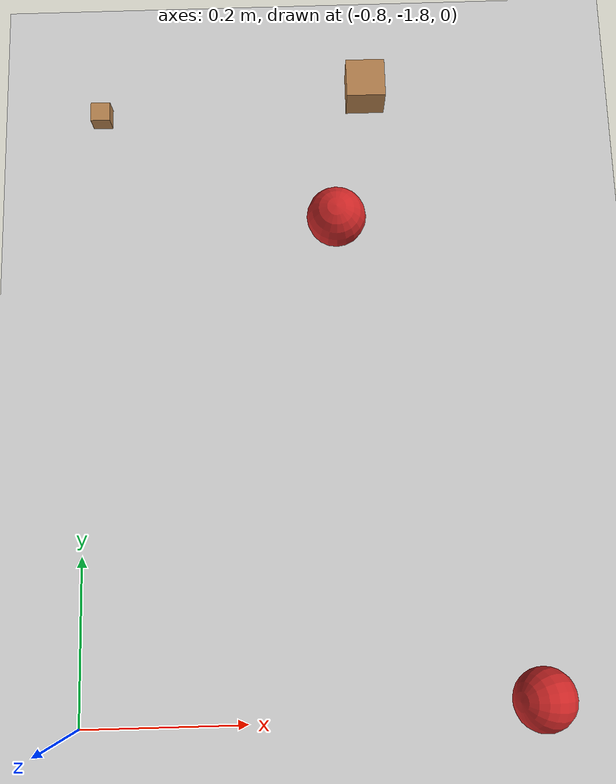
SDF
<sdf version="1.4">
 <world name="default">
  <light name="sun" type="directional">
   <pose>0 0 10 0 -0 0</pose>
   <diffuse>0.8 0.8 0.8 1</diffuse>
   <specular>0.2 0.2 0.2 1</specular>
   <attenuation>
    <range>1000</range>
    <constant>0.9</constant>
    <linear>0.01</linear>
    <quadratic>0.001</quadratic>
   </attenuation>
   <direction>-0.5 0.1 -0.9</direction>
  </light>
  <model name="ground_plane">
   <static>1</static>
   <link name="link">
    <collision name="collision">
     <geometry><plane><normal>0 0 1</normal><size>100 100</size></plane></geometry>
     <surface><friction><ode><mu>100</mu><mu2>50</mu2></ode></friction></surface>
    </collision>
    <visual name="visual">
     <cast_shadows>0</cast_shadows>
     <geometry><plane><normal>0 0 1</normal><size>100 100</size></plane></geometry>
     <material>
      <script><uri>file://media/materials/scripts/gazebo.material</uri><name>Gazebo/Grey</name></script>
     </material>
    </visual>
    <velocity_decay><linear>0</linear><angular>0</angular></velocity_decay>
   </link>
  </model>
  <physics type="ode">
   <max_step_size>0.001</max_step_size>
   <real_time_factor>1</real_time_factor>
   <real_time_update_rate>1000</real_time_update_rate>
   <gravity>0 0 -9.8</gravity>
  </physics>
  <scene><ambient>0.4 0.4 0.4 1</ambient><background>0.7 0.7 0.7 1</background><shadows>1</shadows></scene>
  <spherical_coordinates>
   <surface_model>EARTH_WGS84</surface_model>
   <latitude_deg>0</latitude_deg>
   <longitude_deg>0</longitude_deg>
   <elevation>0</elevation>
   <heading_deg>0</heading_deg>
  </spherical_coordinates>
  <model name="wood_cube_5cm">
   <link name="link">
    <pose>0 0 0.025 0 -0 0</pose>
    <inertial>
     <mass>0.0565</mass>
     <inertia>
      <ixx>2.35417e-05</ixx>
      <ixy>0</ixy>
      <ixz>0</ixz>
      <iyy>2.35417e-05</iyy>
      <iyz>0</iyz>
      <izz>2.35417e-05</izz>
     </inertia>
    </inertial>
    <collision name="collision">
     <geometry><box><size>0.05 0.05 0.05</size></box></geometry>
     <surface><contact><ode><max_vel>0.1</max_vel><min_depth>0.001</min_depth></ode></contact></surface>
    </collision>
    <visual name="visual">
     <geometry><box><size>0.05 0.05 0.05</size></box></geometry>
     <material>
      <script><uri>file://media/materials/scripts/gazebo.material</uri><name>Gazebo/Wood</name></script>
     </material>
    </visual>
    <velocity_decay><linear>0</linear><angular>0</angular></velocity_decay>
   </link>
   <pose>-0.433518 -1 -7e-06 0 -0 0</pose>
   <static>0</static>
  </model>
  <model name="cricket_ball">
   <link name="link">
    <pose>0 0 0.0375 0 -0 0</pose>
    <inertial>
     <mass>0.1467</mass>
     <inertia>
      <ixx>8.25187e-05</ixx>
      <ixy>0</ixy>
      <ixz>0</ixz>
      <iyy>8.25187e-05</iyy>
      <iyz>0</iyz>
      <izz>8.25187e-05</izz>
     </inertia>
    </inertial>
    <collision name="collision"><geometry><sphere><radius>0.0375</radius></sphere></geometry></collision>
    <visual name="visual">
     <geometry><sphere><radius>0.0375</radius></sphere></geometry>
     <material>
      <script><uri>file://media/materials/scripts/gazebo.material</uri><name>Gazebo/Red</name></script>
     </material>
    </visual>
    <velocity_decay><linear>0</linear><angular>0.005</angular></velocity_decay>
   </link>
   <pose>-0.477339 -1.18516 0 0.001379 -0.00066 -7.49116e-23</pose>
   <static>0</static>
  </model>
  <model name="wood_cube_2_5cm">
   <link name="link">
    <pose>0 0 0.0125 0 -0 0</pose>
    <inertial>
     <mass>0.0073</mass>
     <inertia>
      <ixx>7.60417e-07</ixx>
      <ixy>0</ixy>
      <ixz>0</ixz>
      <iyy>7.60417e-07</iyy>
      <iyz>0</iyz>
      <izz>7.60417e-07</izz>
     </inertia>
    </inertial>
    <collision name="collision">
     <geometry><box><size>0.025 0.025 0.025</size></box></geometry>
     <surface><contact><ode><max_vel>0.1</max_vel><min_depth>0.001</min_depth></ode></contact></surface>
    </collision>
    <visual name="visual">
     <geometry><box><size>0.025 0.025 0.025</size></box></geometry>
     <material>
      <script><uri>file://media/materials/scripts/gazebo.material</uri><name>Gazebo/Wood</name></script>
     </material>
    </visual>
    <velocity_decay><linear>0</linear><angular>0</angular></velocity_decay>
   </link>
   <pose>-0.782128 -1.02428 -0.000613 0.012899 0.017722 -0.005116</pose>
   <static>0</static>
  </model>
  <model name="cricket_ball_0">
   <link name="link">
    <pose>0 0 0.0375 0 -0 0</pose>
    <inertial>
     <mass>0.1467</mass>
     <inertia>
      <ixx>8.25187e-05</ixx>
      <ixy>0</ixy>
      <ixz>0</ixz>
      <iyy>8.25187e-05</iyy>
      <iyz>0</iyz>
      <izz>8.25187e-05</izz>
     </inertia>
    </inertial>
    <collision name="collision"><geometry><sphere><radius>0.0375</radius></sphere></geometry></collision>
    <visual name="visual">
     <geometry><sphere><radius>0.0375</radius></sphere></geometry>
     <material>
      <script><uri>file://media/materials/scripts/gazebo.material</uri><name>Gazebo/Red</name></script>
     </material>
    </visual>
    <velocity_decay><linear>0</linear><angular>0.005</angular></velocity_decay>
   </link>
   <pose>-0.289327 -1.77824 0.057406 3.09701 1.01059 3.09233</pose>
   <static>0</static>
  </model>
 </world>
</sdf>
